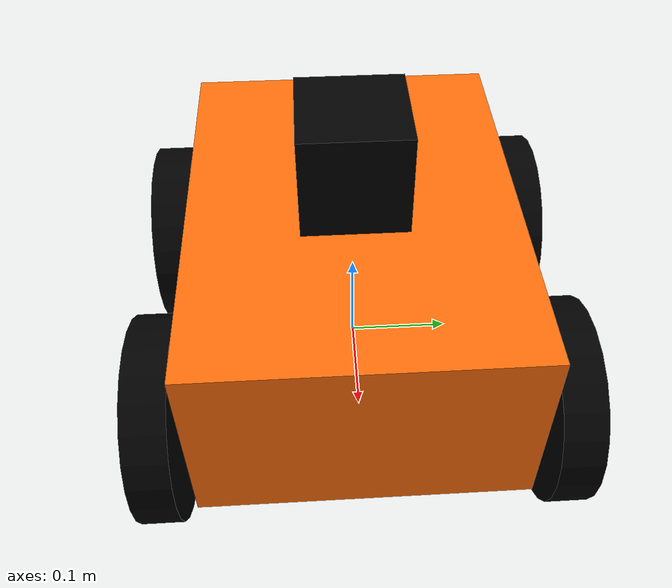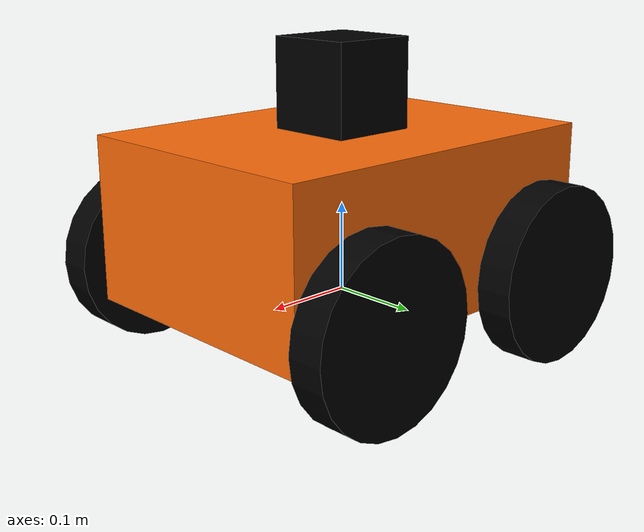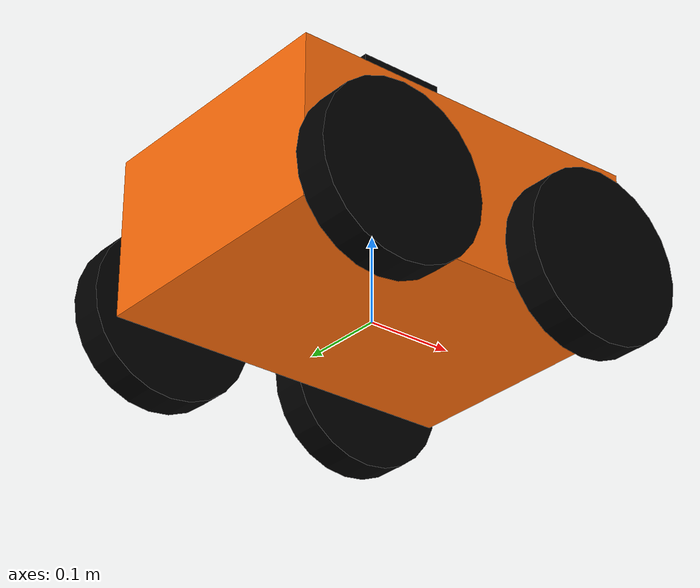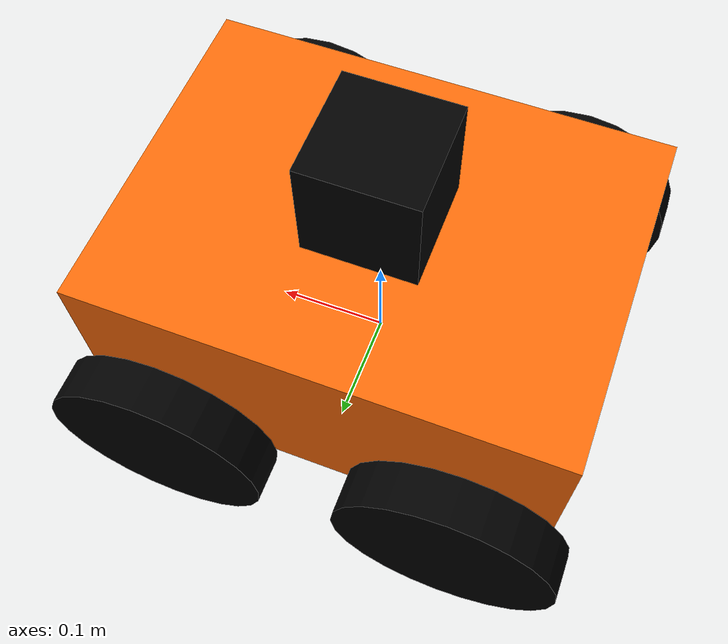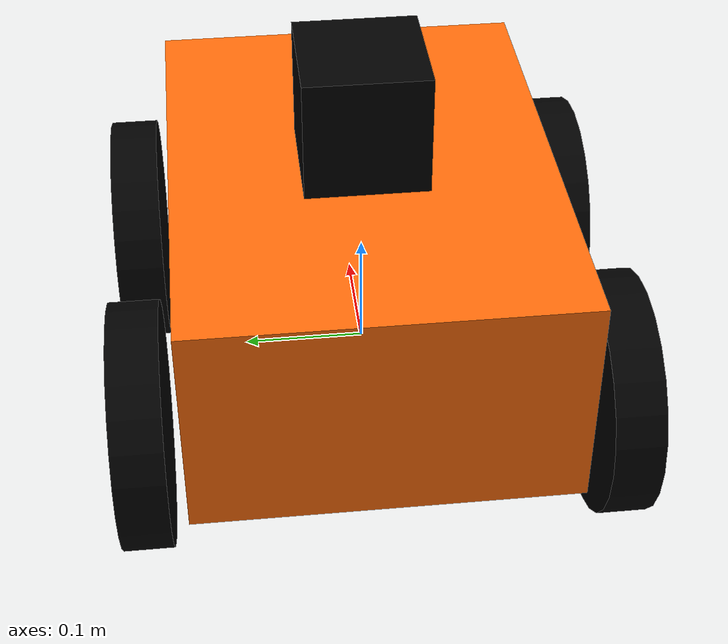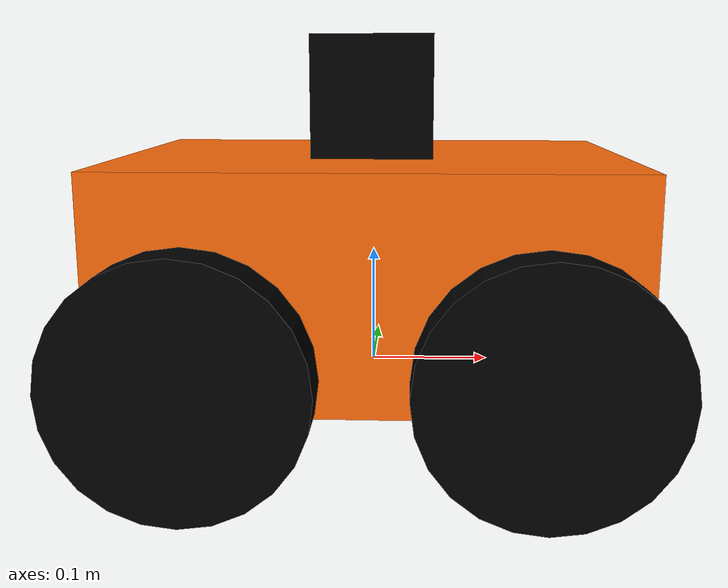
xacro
<?xml version="1.0"?>

<robot name="otter" xmlns:xacro="http://www.ros.org/wiki/xacro">

  <!-- Constants for robot dimensions -->
  <xacro:property name="PI" value="3.1415926535897931"/>
  <xacro:property name="mass" value="16.523" />

  <xacro:property name="laser_offset" value="0.05" />

  <xacro:property name="wheelbase" value="0.262" />
  <xacro:property name="track" value="0.37559" />
  <xacro:property name="wheel_vertical_offset" value="0.0345" />

  <xacro:property name="wheel_radius" value="0.098" />
  <xacro:property name="wheel_width" value="0.040" />

  <xacro:property name="chassis_length" value="0.420" />
  <xacro:property name="chassis_width" value="0.310" />
  <xacro:property name="chassis_height" value="0.184" />

  <!-- Import all Gazebo-customization elements, including Gazebo colors -->
  <xacro:include filename="$(find otter_description)/urdf/otter.gazebo" />

  <!-- Import Rviz colors -->
  <xacro:include filename="$(find otter_description)/urdf/materials.xacro" />

  <!-- Base Link -->
  <link name="base_link">
    <collision>
      <origin xyz="0 0 ${chassis_height/2}" rpy="0 0 0"/>
      <geometry>
        <box size="${chassis_length} ${chassis_width} ${chassis_height}"/>
      </geometry>
    </collision>

    <visual>
      <origin xyz="0 0 ${chassis_height/2}" rpy="0 0 0"/>
      <geometry>
        <box size="${chassis_length} ${chassis_width} ${chassis_height}"/>
      </geometry>
      <material name="orange"/>
    </visual>

    <inertial>
      <origin xyz="0 0 ${chassis_height/2}" rpy="0 0 0"/>
      <mass value="${mass}"/>
      <inertia
          ixx="${mass / 12.0 * (chassis_width*chassis_width + chassis_height*chassis_height)}" ixy="0.0" ixz="0.0"
          iyy="${mass / 12.0 * (chassis_height*chassis_height + chassis_width*chassis_width)}" iyz="0.0"
          izz="${mass / 12.0 * (chassis_width*chassis_width + chassis_width*chassis_width)}"/>
    </inertial>
  </link>

  <!-- Lidar -->
  <link name="laser">
    <collision>
      <origin xyz="0 0 0" rpy="0 0 0"/>
      <geometry>
	<box size="0.1 0.1 0.1"/>
      </geometry>
    </collision>

    <visual>
      <origin xyz="0 0 0" rpy="0 0 0"/>
      <geometry>
        <box size="0.1 0.1 0.1"/>
      </geometry>
      <material name="black"/>
    </visual>

    <inertial>
      <mass value="1e-6" />
      <origin xyz="0 0 0" rpy="0 0 0"/>
      <inertia ixx="1e-6" ixy="0" ixz="0" iyy="1e-6" iyz="0" izz="1e-6" />
    </inertial>
  </link>

  <joint name="laser_joint" type="fixed">
    <axis xyz="1 0 0" />
    <origin xyz="0 0 ${chassis_height + laser_offset}" rpy="0 0 0"/>
    <parent link="base_link"/>
    <child link="laser"/>
  </joint>

  <!-- Wheels -->
  <xacro:macro name="wheel" params="prefix *joint_pose">
    <link name="${prefix}_wheel_link">
      <visual>
        <origin xyz="0 0 0" rpy="${PI/2} 0 0"/>
        <geometry>
          <cylinder radius="${wheel_radius}" length="${wheel_width}"/>
        </geometry>
        <material name="black" />
      </visual>
      <collision>
        <origin xyz="0 0 0" rpy="${PI/2} 0 0"/>
        <geometry>
          <cylinder radius="${wheel_radius}" length="${wheel_width}"/>
        </geometry>
      </collision>
      <inertial>
        <origin xyz="0 0 0" rpy="0 0 0"/>
        <mass value="4.77"/>
        <inertia
          ixx="0.013" ixy="0.0" ixz="0.0"
          iyy="0.024" iyz="0.0"
          izz="0.013"/>
      </inertial>
    </link>

    <gazebo reference="${prefix}_wheel_link">
      <material>Gazebo/DarkGrey</material>
    </gazebo>

    <joint name="${prefix}_wheel_joint" type="continuous">
      <parent link="base_link"/>
      <child link="${prefix}_wheel_link" />
      <xacro:insert_block name="joint_pose" />
      <axis xyz="0 1 0" />
    </joint>

    <transmission name="${prefix}_wheel_trans">
      <type>transmission_interface/SimpleTransmission</type>
      <joint name="${prefix}_wheel_joint">
        <hardwareInterface>hardware_interface/VelocityJointInterface</hardwareInterface>
      </joint>
      <actuator name="${prefix}_actuator">
        <mechanicalReduction>1</mechanicalReduction>
      </actuator>
    </transmission>
  </xacro:macro>

  <xacro:wheel prefix="front_left">
    <origin xyz="${wheelbase/2} ${track/2} ${wheel_vertical_offset}" rpy="0 0 0" />
  </xacro:wheel>
  <xacro:wheel prefix="front_right">
    <origin xyz="${wheelbase/2} ${-track/2} ${wheel_vertical_offset}" rpy="0 0 0" />
  </xacro:wheel>
  <xacro:wheel prefix="rear_left">
    <origin xyz="${-wheelbase/2} ${track/2} ${wheel_vertical_offset}" rpy="0 0 0" />
  </xacro:wheel>
  <xacro:wheel prefix="rear_right">
    <origin xyz="${-wheelbase/2} ${-track/2} ${wheel_vertical_offset}" rpy="0 0 0" />
  </xacro:wheel>

</robot>

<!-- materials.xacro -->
<robot>

  <material name="black">
    <color rgba="0.0 0.0 0.0 1.0"/>
  </material>

  <material name="blue">
    <color rgba="0.0 0.0 0.8 1.0"/>
  </material>

  <material name="green">
    <color rgba="0.0 0.8 0.0 1.0"/>
  </material>

  <material name="grey">
    <color rgba="0.2 0.2 0.2 1.0"/>
  </material>

  <material name="orange">
    <color rgba="${255/255} ${108/255} ${10/255} 1.0"/>
  </material>

  <material name="brown">
    <color rgba="${222/255} ${207/255} ${195/255} 1.0"/>
  </material>

  <material name="red">
    <color rgba="0.8 0.0 0.0 1.0"/>
  </material>

  <material name="white">
    <color rgba="1.0 1.0 1.0 1.0"/>
  </material>

  <material name="dark_grey">
    <color rgba="0.2 0.2 0.2 1.0" />
  </material>

  <material name="light_grey">
    <color rgba="0.4 0.4 0.4 1.0" />
  </material>

  <material name="yellow">
    <color rgba="0.8 0.8 0.0 1.0" />
  </material>

</robot>
